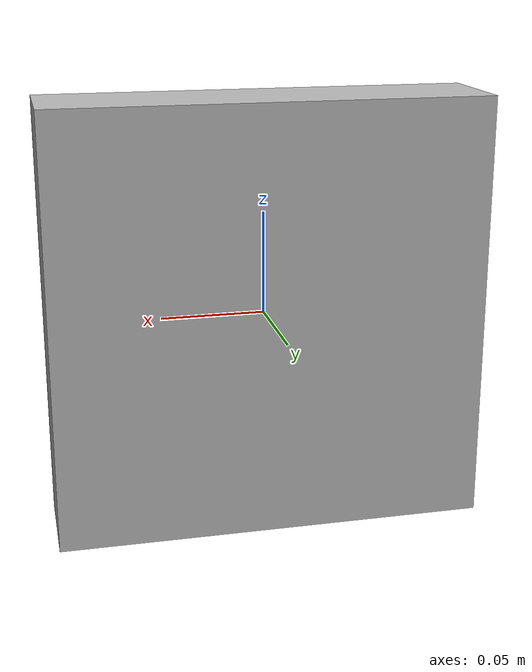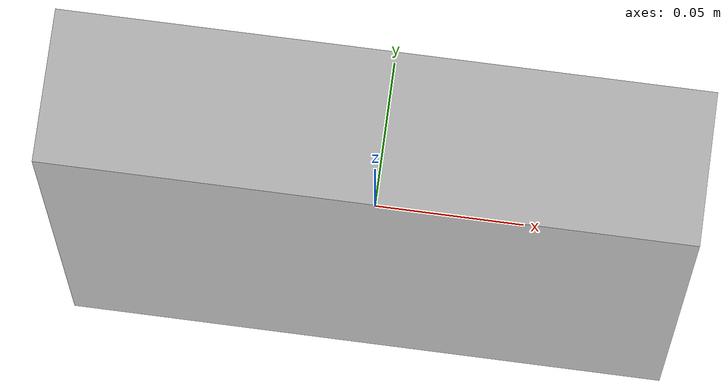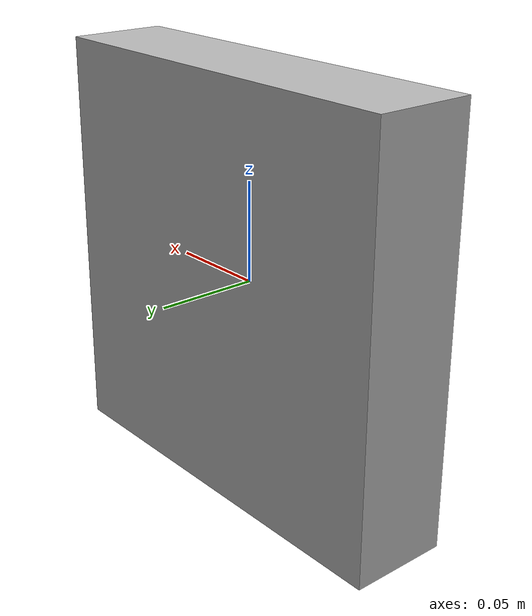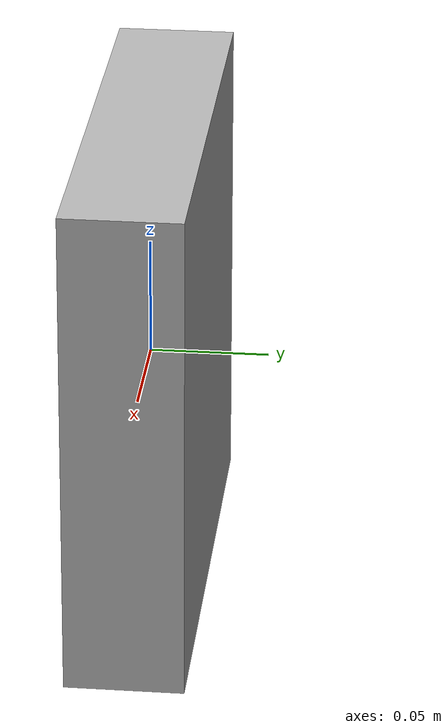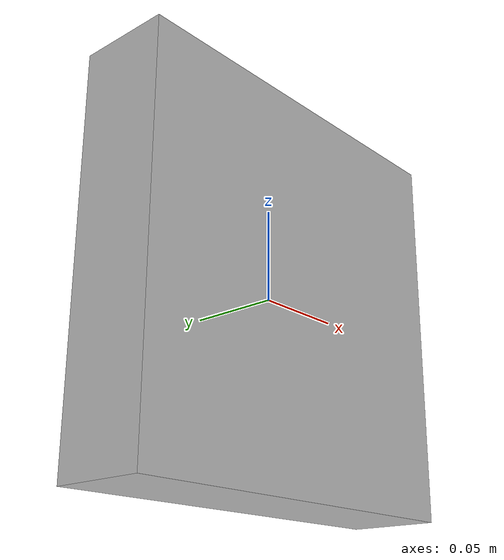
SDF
<?xml version="1.0" ?>
<sdf version="1.6">
  <model name="aruco_tag_0">
    <static>true</static>
    <link name="link">
      <pose>0 0 0 0 0 0</pose>
      <visual name="visual">
        <geometry>
          <box>
            <size>0.21 0.05 0.21</size>
          </box>
        </geometry>
        <material>
          <script>
            <uri>model://aruco_tag_0/materials/scripts</uri>
            <uri>model://aruco_tag_0/materials/textures</uri>
            <name>aruco/material_0</name>
          </script>
        </material>
      </visual>
    </link>
  </model>
</sdf>
